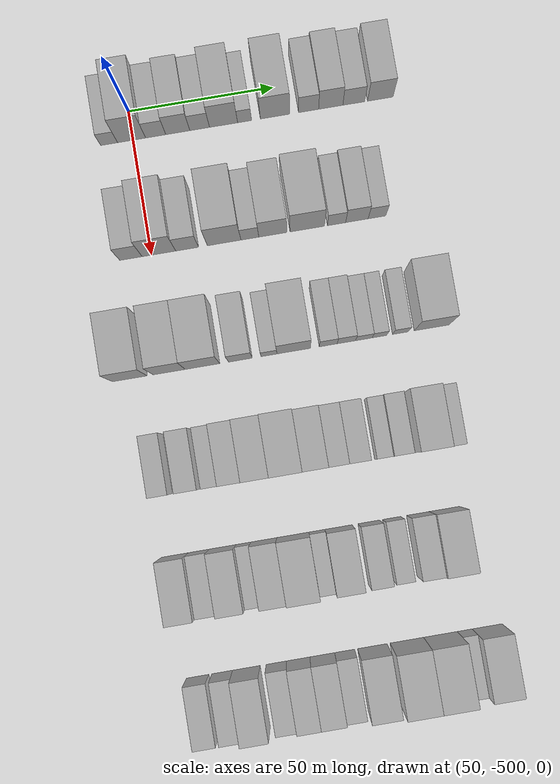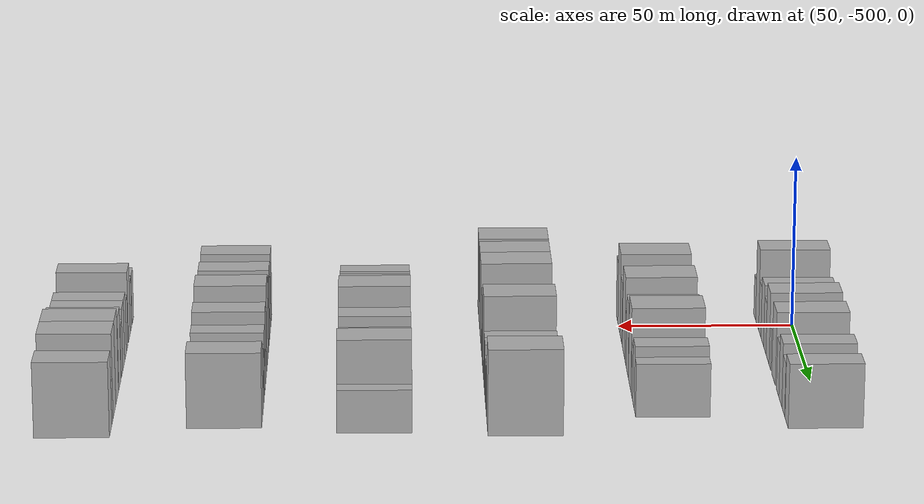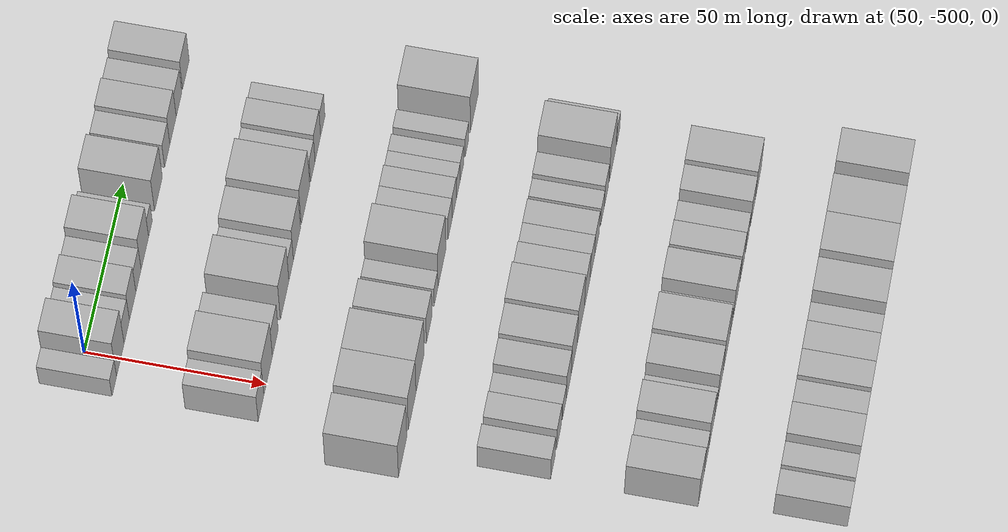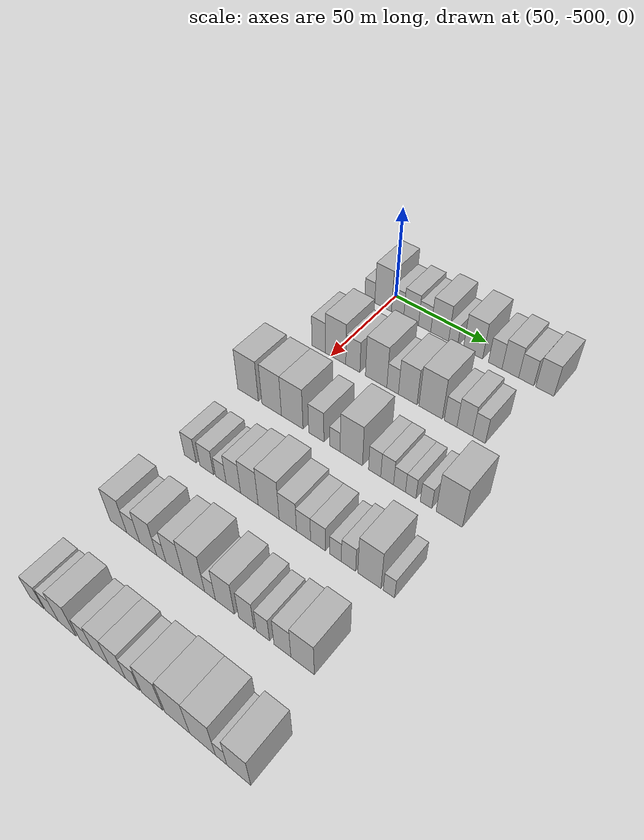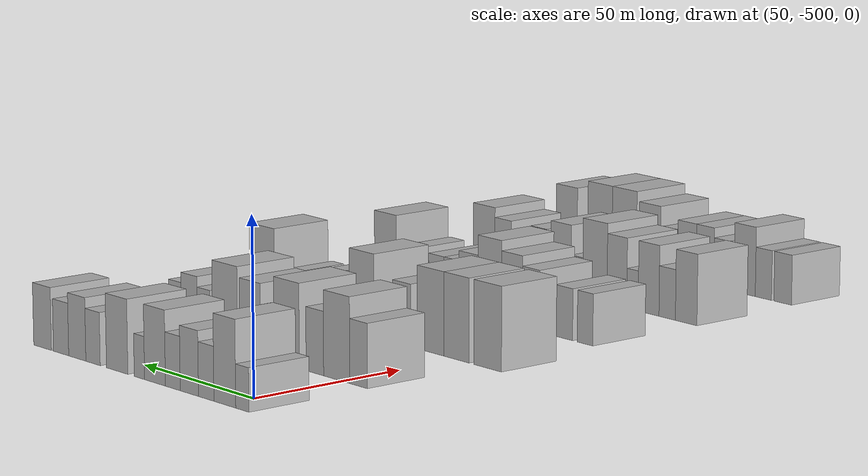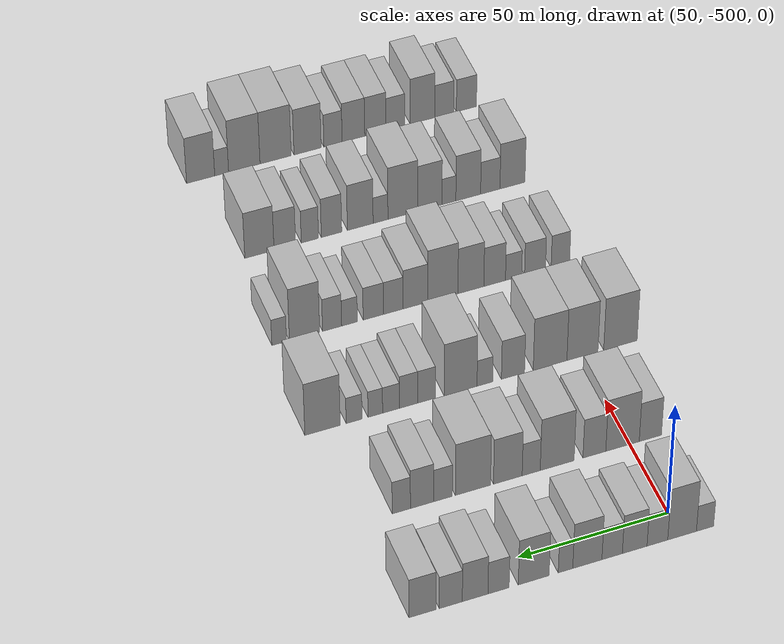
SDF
<sdf version="1.6">
 <world name="default">
  <model name="building_14">
   <static>1</static>
   <pose>50.0000 -508.1706 0 0.000000 0.000000 0.000000</pose>
   <link name="link">
    <pose>0 0 6.00 0 0 0</pose>
    <collision name="collision"><geometry><box><size>20.0000 5.7986 12.0000</size></box></geometry></collision>
    <visual name="visual">
     <cast_shadows>0</cast_shadows>
     <geometry><box><size>20.0000 5.7986 12.0000</size></box></geometry>
     <material>
      <script>
       <uri>model://HANNAS_wall/materials/scripts</uri>
       <uri>model://HANNAS_wall/materials/textures</uri>
       <name>vrc/HANNAS_wall</name>
      </script>
     </material>
    </visual>
   </link>
  </model>
  <model name="building_15">
   <static>1</static>
   <pose>50.0000 -500.4603 0 0.000000 0.000000 0.000000</pose>
   <link name="link">
    <pose>0 0 12.00 0 0 0</pose>
    <collision name="collision"><geometry><box><size>20.0000 9.6219 24.0000</size></box></geometry></collision>
    <visual name="visual">
     <cast_shadows>0</cast_shadows>
     <geometry><box><size>20.0000 9.6219 24.0000</size></box></geometry>
     <material>
      <script>
       <uri>model://HANNAS_wall/materials/scripts</uri>
       <uri>model://HANNAS_wall/materials/textures</uri>
       <name>vrc/HANNAS_wall</name>
      </script>
     </material>
    </visual>
   </link>
  </model>
  <model name="building_16">
   <static>1</static>
   <pose>50.0000 -492.1822 0 0.000000 0.000000 0.000000</pose>
   <link name="link">
    <pose>0 0 7.50 0 0 0</pose>
    <collision name="collision"><geometry><box><size>20.0000 6.9342 15.0000</size></box></geometry></collision>
    <visual name="visual">
     <cast_shadows>0</cast_shadows>
     <geometry><box><size>20.0000 6.9342 15.0000</size></box></geometry>
     <material>
      <script>
       <uri>model://HANNAS_wall/materials/scripts</uri>
       <uri>model://HANNAS_wall/materials/textures</uri>
       <name>vrc/HANNAS_wall</name>
      </script>
     </material>
    </visual>
   </link>
  </model>
  <model name="building_17">
   <static>1</static>
   <pose>50.0000 -484.5919 0 0.000000 0.000000 0.000000</pose>
   <link name="link">
    <pose>0 0 9.00 0 0 0</pose>
    <collision name="collision"><geometry><box><size>20.0000 8.2465 18.0000</size></box></geometry></collision>
    <visual name="visual">
     <cast_shadows>0</cast_shadows>
     <geometry><box><size>20.0000 8.2465 18.0000</size></box></geometry>
     <material>
      <script>
       <uri>model://HANNAS_wall/materials/scripts</uri>
       <uri>model://HANNAS_wall/materials/textures</uri>
       <name>vrc/HANNAS_wall</name>
      </script>
     </material>
    </visual>
   </link>
  </model>
  <model name="building_18">
   <static>1</static>
   <pose>50.0000 -477.0781 0 0.000000 0.000000 0.000000</pose>
   <link name="link">
    <pose>0 0 7.50 0 0 0</pose>
    <collision name="collision"><geometry><box><size>20.0000 6.7811 15.0000</size></box></geometry></collision>
    <visual name="visual">
     <cast_shadows>0</cast_shadows>
     <geometry><box><size>20.0000 6.7811 15.0000</size></box></geometry>
     <material>
      <script>
       <uri>model://HANNAS_wall/materials/scripts</uri>
       <uri>model://HANNAS_wall/materials/textures</uri>
       <name>vrc/HANNAS_wall</name>
      </script>
     </material>
    </visual>
   </link>
  </model>
  <model name="building_19">
   <static>1</static>
   <pose>50.0000 -468.8550 0 0.000000 0.000000 0.000000</pose>
   <link name="link">
    <pose>0 0 10.50 0 0 0</pose>
    <collision name="collision"><geometry><box><size>20.0000 9.6651 21.0000</size></box></geometry></collision>
    <visual name="visual">
     <cast_shadows>0</cast_shadows>
     <geometry><box><size>20.0000 9.6651 21.0000</size></box></geometry>
     <material>
      <script>
       <uri>model://HANNAS_wall/materials/scripts</uri>
       <uri>model://HANNAS_wall/materials/textures</uri>
       <name>vrc/HANNAS_wall</name>
      </script>
     </material>
    </visual>
   </link>
  </model>
  <model name="building_20">
   <static>1</static>
   <pose>50.0000 -461.6189 0 0.000000 0.000000 0.000000</pose>
   <link name="link">
    <pose>0 0 6.00 0 0 0</pose>
    <collision name="collision"><geometry><box><size>20.0000 4.8071 12.0000</size></box></geometry></collision>
    <visual name="visual">
     <cast_shadows>0</cast_shadows>
     <geometry><box><size>20.0000 4.8071 12.0000</size></box></geometry>
     <material>
      <script>
       <uri>model://HANNAS_wall/materials/scripts</uri>
       <uri>model://HANNAS_wall/materials/textures</uri>
       <name>vrc/HANNAS_wall</name>
      </script>
     </material>
    </visual>
   </link>
  </model>
  <model name="building_21">
   <static>1</static>
   <pose>50.0000 -451.1393 0 0.000000 0.000000 0.000000</pose>
   <link name="link">
    <pose>0 0 10.50 0 0 0</pose>
    <collision name="collision"><geometry><box><size>20.0000 10.1521 21.0000</size></box></geometry></collision>
    <visual name="visual">
     <cast_shadows>0</cast_shadows>
     <geometry><box><size>20.0000 10.1521 21.0000</size></box></geometry>
     <material>
      <script>
       <uri>model://HANNAS_wall/materials/scripts</uri>
       <uri>model://HANNAS_wall/materials/textures</uri>
       <name>vrc/HANNAS_wall</name>
      </script>
     </material>
    </visual>
   </link>
  </model>
  <model name="building_22">
   <static>1</static>
   <pose>50.0000 -439.6052 0 0.000000 0.000000 0.000000</pose>
   <link name="link">
    <pose>0 0 7.50 0 0 0</pose>
    <collision name="collision"><geometry><box><size>20.0000 6.9161 15.0000</size></box></geometry></collision>
    <visual name="visual">
     <cast_shadows>0</cast_shadows>
     <geometry><box><size>20.0000 6.9161 15.0000</size></box></geometry>
     <material>
      <script>
       <uri>model://HANNAS_wall/materials/scripts</uri>
       <uri>model://HANNAS_wall/materials/textures</uri>
       <name>vrc/HANNAS_wall</name>
      </script>
     </material>
    </visual>
   </link>
  </model>
  <model name="building_23">
   <static>1</static>
   <pose>50.0000 -431.9623 0 0.000000 0.000000 0.000000</pose>
   <link name="link">
    <pose>0 0 9.00 0 0 0</pose>
    <collision name="collision"><geometry><box><size>20.0000 8.3697 18.0000</size></box></geometry></collision>
    <visual name="visual">
     <cast_shadows>0</cast_shadows>
     <geometry><box><size>20.0000 8.3697 18.0000</size></box></geometry>
     <material>
      <script>
       <uri>model://HANNAS_wall/materials/scripts</uri>
       <uri>model://HANNAS_wall/materials/textures</uri>
       <name>vrc/HANNAS_wall</name>
      </script>
     </material>
    </visual>
   </link>
  </model>
  <model name="building_24">
   <static>1</static>
   <pose>50.0000 -424.0285 0 0.000000 0.000000 0.000000</pose>
   <link name="link">
    <pose>0 0 7.50 0 0 0</pose>
    <collision name="collision"><geometry><box><size>20.0000 7.4979 15.0000</size></box></geometry></collision>
    <visual name="visual">
     <cast_shadows>0</cast_shadows>
     <geometry><box><size>20.0000 7.4979 15.0000</size></box></geometry>
     <material>
      <script>
       <uri>model://HANNAS_wall/materials/scripts</uri>
       <uri>model://HANNAS_wall/materials/textures</uri>
       <name>vrc/HANNAS_wall</name>
      </script>
     </material>
    </visual>
   </link>
  </model>
  <model name="building_25">
   <static>1</static>
   <pose>50.0000 -414.8759 0 0.000000 0.000000 0.000000</pose>
   <link name="link">
    <pose>0 0 9.00 0 0 0</pose>
    <collision name="collision"><geometry><box><size>20.0000 8.8074 18.0000</size></box></geometry></collision>
    <visual name="visual">
     <cast_shadows>0</cast_shadows>
     <geometry><box><size>20.0000 8.8074 18.0000</size></box></geometry>
     <material>
      <script>
       <uri>model://HANNAS_wall/materials/scripts</uri>
       <uri>model://HANNAS_wall/materials/textures</uri>
       <name>vrc/HANNAS_wall</name>
      </script>
     </material>
    </visual>
   </link>
  </model>
  <model name="building_150">
   <static>1</static>
   <pose>90.0000 -506.9817 0 0.000000 0.000000 0.000000</pose>
   <link name="link">
    <pose>0 0 9.00 0 0 0</pose>
    <collision name="collision"><geometry><box><size>20.0000 7.6288 18.0000</size></box></geometry></collision>
    <visual name="visual">
     <cast_shadows>0</cast_shadows>
     <geometry><box><size>20.0000 7.6288 18.0000</size></box></geometry>
     <material>
      <script>
       <uri>model://HANNAS_wall/materials/scripts</uri>
       <uri>model://HANNAS_wall/materials/textures</uri>
       <name>vrc/HANNAS_wall</name>
      </script>
     </material>
    </visual>
   </link>
  </model>
  <model name="building_151">
   <static>1</static>
   <pose>90.0000 -497.4507 0 0.000000 0.000000 0.000000</pose>
   <link name="link">
    <pose>0 0 12.00 0 0 0</pose>
    <collision name="collision"><geometry><box><size>20.0000 11.4333 24.0000</size></box></geometry></collision>
    <visual name="visual">
     <cast_shadows>0</cast_shadows>
     <geometry><box><size>20.0000 11.4333 24.0000</size></box></geometry>
     <material>
      <script>
       <uri>model://HANNAS_wall/materials/scripts</uri>
       <uri>model://HANNAS_wall/materials/textures</uri>
       <name>vrc/HANNAS_wall</name>
      </script>
     </material>
    </visual>
   </link>
  </model>
  <model name="building_152">
   <static>1</static>
   <pose>90.0000 -487.8440 0 0.000000 0.000000 0.000000</pose>
   <link name="link">
    <pose>0 0 9.00 0 0 0</pose>
    <collision name="collision"><geometry><box><size>20.0000 7.7801 18.0000</size></box></geometry></collision>
    <visual name="visual">
     <cast_shadows>0</cast_shadows>
     <geometry><box><size>20.0000 7.7801 18.0000</size></box></geometry>
     <material>
      <script>
       <uri>model://HANNAS_wall/materials/scripts</uri>
       <uri>model://HANNAS_wall/materials/textures</uri>
       <name>vrc/HANNAS_wall</name>
      </script>
     </material>
    </visual>
   </link>
  </model>
  <model name="building_153">
   <static>1</static>
   <pose>90.0000 -475.2199 0 0.000000 0.000000 0.000000</pose>
   <link name="link">
    <pose>0 0 12.00 0 0 0</pose>
    <collision name="collision"><geometry><box><size>20.0000 11.4680 24.0000</size></box></geometry></collision>
    <visual name="visual">
     <cast_shadows>0</cast_shadows>
     <geometry><box><size>20.0000 11.4680 24.0000</size></box></geometry>
     <material>
      <script>
       <uri>model://HANNAS_wall/materials/scripts</uri>
       <uri>model://HANNAS_wall/materials/textures</uri>
       <name>vrc/HANNAS_wall</name>
      </script>
     </material>
    </visual>
   </link>
  </model>
  <model name="building_154">
   <static>1</static>
   <pose>90.0000 -466.4345 0 0.000000 0.000000 0.000000</pose>
   <link name="link">
    <pose>0 0 7.50 0 0 0</pose>
    <collision name="collision"><geometry><box><size>20.0000 6.1028 15.0000</size></box></geometry></collision>
    <visual name="visual">
     <cast_shadows>0</cast_shadows>
     <geometry><box><size>20.0000 6.1028 15.0000</size></box></geometry>
     <material>
      <script>
       <uri>model://HANNAS_wall/materials/scripts</uri>
       <uri>model://HANNAS_wall/materials/textures</uri>
       <name>vrc/HANNAS_wall</name>
      </script>
     </material>
    </visual>
   </link>
  </model>
  <model name="building_155">
   <static>1</static>
   <pose>90.0000 -458.5671 0 0.000000 0.000000 0.000000</pose>
   <link name="link">
    <pose>0 0 10.50 0 0 0</pose>
    <collision name="collision"><geometry><box><size>20.0000 9.6318 21.0000</size></box></geometry></collision>
    <visual name="visual">
     <cast_shadows>0</cast_shadows>
     <geometry><box><size>20.0000 9.6318 21.0000</size></box></geometry>
     <material>
      <script>
       <uri>model://HANNAS_wall/materials/scripts</uri>
       <uri>model://HANNAS_wall/materials/textures</uri>
       <name>vrc/HANNAS_wall</name>
      </script>
     </material>
    </visual>
   </link>
  </model>
  <model name="building_156">
   <static>1</static>
   <pose>90.0000 -446.8665 0 0.000000 0.000000 0.000000</pose>
   <link name="link">
    <pose>0 0 12.00 0 0 0</pose>
    <collision name="collision"><geometry><box><size>20.0000 11.7695 24.0000</size></box></geometry></collision>
    <visual name="visual">
     <cast_shadows>0</cast_shadows>
     <geometry><box><size>20.0000 11.7695 24.0000</size></box></geometry>
     <material>
      <script>
       <uri>model://HANNAS_wall/materials/scripts</uri>
       <uri>model://HANNAS_wall/materials/textures</uri>
       <name>vrc/HANNAS_wall</name>
      </script>
     </material>
    </visual>
   </link>
  </model>
  <model name="building_157">
   <static>1</static>
   <pose>90.0000 -436.8629 0 0.000000 0.000000 0.000000</pose>
   <link name="link">
    <pose>0 0 7.50 0 0 0</pose>
    <collision name="collision"><geometry><box><size>20.0000 6.2377 15.0000</size></box></geometry></collision>
    <visual name="visual">
     <cast_shadows>0</cast_shadows>
     <geometry><box><size>20.0000 6.2377 15.0000</size></box></geometry>
     <material>
      <script>
       <uri>model://HANNAS_wall/materials/scripts</uri>
       <uri>model://HANNAS_wall/materials/textures</uri>
       <name>vrc/HANNAS_wall</name>
      </script>
     </material>
    </visual>
   </link>
  </model>
  <model name="building_158">
   <static>1</static>
   <pose>90.0000 -429.8917 0 0.000000 0.000000 0.000000</pose>
   <link name="link">
    <pose>0 0 9.00 0 0 0</pose>
    <collision name="collision"><geometry><box><size>20.0000 7.7046 18.0000</size></box></geometry></collision>
    <visual name="visual">
     <cast_shadows>0</cast_shadows>
     <geometry><box><size>20.0000 7.7046 18.0000</size></box></geometry>
     <material>
      <script>
       <uri>model://HANNAS_wall/materials/scripts</uri>
       <uri>model://HANNAS_wall/materials/textures</uri>
       <name>vrc/HANNAS_wall</name>
      </script>
     </material>
    </visual>
   </link>
  </model>
  <model name="building_159">
   <static>1</static>
   <pose>90.0000 -423.0237 0 0.000000 0.000000 0.000000</pose>
   <link name="link">
    <pose>0 0 7.50 0 0 0</pose>
    <collision name="collision"><geometry><box><size>20.0000 6.0314 15.0000</size></box></geometry></collision>
    <visual name="visual">
     <cast_shadows>0</cast_shadows>
     <geometry><box><size>20.0000 6.0314 15.0000</size></box></geometry>
     <material>
      <script>
       <uri>model://HANNAS_wall/materials/scripts</uri>
       <uri>model://HANNAS_wall/materials/textures</uri>
       <name>vrc/HANNAS_wall</name>
      </script>
     </material>
    </visual>
   </link>
  </model>
  <model name="building_285">
   <static>1</static>
   <pose>130.0000 -513.6266 0 0.000000 0.000000 0.000000</pose>
   <link name="link">
    <pose>0 0 12.00 0 0 0</pose>
    <collision name="collision"><geometry><box><size>20.0000 11.7032 24.0000</size></box></geometry></collision>
    <visual name="visual">
     <cast_shadows>0</cast_shadows>
     <geometry><box><size>20.0000 11.7032 24.0000</size></box></geometry>
     <material>
      <script>
       <uri>model://HANNAS_wall/materials/scripts</uri>
       <uri>model://HANNAS_wall/materials/textures</uri>
       <name>vrc/HANNAS_wall</name>
      </script>
     </material>
    </visual>
   </link>
  </model>
  <model name="building_286">
   <static>1</static>
   <pose>130.0000 -500.3649 0 0.000000 0.000000 0.000000</pose>
   <link name="link">
    <pose>0 0 12.00 0 0 0</pose>
    <collision name="collision"><geometry><box><size>20.0000 10.8203 24.0000</size></box></geometry></collision>
    <visual name="visual">
     <cast_shadows>0</cast_shadows>
     <geometry><box><size>20.0000 10.8203 24.0000</size></box></geometry>
     <material>
      <script>
       <uri>model://HANNAS_wall/materials/scripts</uri>
       <uri>model://HANNAS_wall/materials/textures</uri>
       <name>vrc/HANNAS_wall</name>
      </script>
     </material>
    </visual>
   </link>
  </model>
  <model name="building_287">
   <static>1</static>
   <pose>130.0000 -489.1140 0 0.000000 0.000000 0.000000</pose>
   <link name="link">
    <pose>0 0 12.00 0 0 0</pose>
    <collision name="collision"><geometry><box><size>20.0000 11.6815 24.0000</size></box></geometry></collision>
    <visual name="visual">
     <cast_shadows>0</cast_shadows>
     <geometry><box><size>20.0000 11.6815 24.0000</size></box></geometry>
     <material>
      <script>
       <uri>model://HANNAS_wall/materials/scripts</uri>
       <uri>model://HANNAS_wall/materials/textures</uri>
       <name>vrc/HANNAS_wall</name>
      </script>
     </material>
    </visual>
   </link>
  </model>
  <model name="building_288">
   <static>1</static>
   <pose>130.0000 -476.2747 0 0.000000 0.000000 0.000000</pose>
   <link name="link">
    <pose>0 0 9.00 0 0 0</pose>
    <collision name="collision"><geometry><box><size>20.0000 7.9972 18.0000</size></box></geometry></collision>
    <visual name="visual">
     <cast_shadows>0</cast_shadows>
     <geometry><box><size>20.0000 7.9972 18.0000</size></box></geometry>
     <material>
      <script>
       <uri>model://HANNAS_wall/materials/scripts</uri>
       <uri>model://HANNAS_wall/materials/textures</uri>
       <name>vrc/HANNAS_wall</name>
      </script>
     </material>
    </visual>
   </link>
  </model>
  <model name="building_289">
   <static>1</static>
   <pose>130.0000 -466.5886 0 0.000000 0.000000 0.000000</pose>
   <link name="link">
    <pose>0 0 6.00 0 0 0</pose>
    <collision name="collision"><geometry><box><size>20.0000 5.3749 12.0000</size></box></geometry></collision>
    <visual name="visual">
     <cast_shadows>0</cast_shadows>
     <geometry><box><size>20.0000 5.3749 12.0000</size></box></geometry>
     <material>
      <script>
       <uri>model://HANNAS_wall/materials/scripts</uri>
       <uri>model://HANNAS_wall/materials/textures</uri>
       <name>vrc/HANNAS_wall</name>
      </script>
     </material>
    </visual>
   </link>
  </model>
  <model name="building_290">
   <static>1</static>
   <pose>130.0000 -458.2602 0 0.000000 0.000000 0.000000</pose>
   <link name="link">
    <pose>0 0 12.00 0 0 0</pose>
    <collision name="collision"><geometry><box><size>20.0000 11.2819 24.0000</size></box></geometry></collision>
    <visual name="visual">
     <cast_shadows>0</cast_shadows>
     <geometry><box><size>20.0000 11.2819 24.0000</size></box></geometry>
     <material>
      <script>
       <uri>model://HANNAS_wall/materials/scripts</uri>
       <uri>model://HANNAS_wall/materials/textures</uri>
       <name>vrc/HANNAS_wall</name>
      </script>
     </material>
    </visual>
   </link>
  </model>
  <model name="building_291">
   <static>1</static>
   <pose>130.0000 -446.6075 0 0.000000 0.000000 0.000000</pose>
   <link name="link">
    <pose>0 0 7.50 0 0 0</pose>
    <collision name="collision"><geometry><box><size>20.0000 6.0234 15.0000</size></box></geometry></collision>
    <visual name="visual">
     <cast_shadows>0</cast_shadows>
     <geometry><box><size>20.0000 6.0234 15.0000</size></box></geometry>
     <material>
      <script>
       <uri>model://HANNAS_wall/materials/scripts</uri>
       <uri>model://HANNAS_wall/materials/textures</uri>
       <name>vrc/HANNAS_wall</name>
      </script>
     </material>
    </visual>
   </link>
  </model>
  <model name="building_292">
   <static>1</static>
   <pose>130.0000 -440.4852 0 0.000000 0.000000 0.000000</pose>
   <link name="link">
    <pose>0 0 7.50 0 0 0</pose>
    <collision name="collision"><geometry><box><size>20.0000 6.2213 15.0000</size></box></geometry></collision>
    <visual name="visual">
     <cast_shadows>0</cast_shadows>
     <geometry><box><size>20.0000 6.2213 15.0000</size></box></geometry>
     <material>
      <script>
       <uri>model://HANNAS_wall/materials/scripts</uri>
       <uri>model://HANNAS_wall/materials/textures</uri>
       <name>vrc/HANNAS_wall</name>
      </script>
     </material>
    </visual>
   </link>
  </model>
  <model name="building_293">
   <static>1</static>
   <pose>130.0000 -434.5391 0 0.000000 0.000000 0.000000</pose>
   <link name="link">
    <pose>0 0 6.00 0 0 0</pose>
    <collision name="collision"><geometry><box><size>20.0000 5.6709 12.0000</size></box></geometry></collision>
    <visual name="visual">
     <cast_shadows>0</cast_shadows>
     <geometry><box><size>20.0000 5.6709 12.0000</size></box></geometry>
     <material>
      <script>
       <uri>model://HANNAS_wall/materials/scripts</uri>
       <uri>model://HANNAS_wall/materials/textures</uri>
       <name>vrc/HANNAS_wall</name>
      </script>
     </material>
    </visual>
   </link>
  </model>
  <model name="building_294">
   <static>1</static>
   <pose>130.0000 -429.2324 0 0.000000 0.000000 0.000000</pose>
   <link name="link">
    <pose>0 0 6.00 0 0 0</pose>
    <collision name="collision"><geometry><box><size>20.0000 4.9425 12.0000</size></box></geometry></collision>
    <visual name="visual">
     <cast_shadows>0</cast_shadows>
     <geometry><box><size>20.0000 4.9425 12.0000</size></box></geometry>
     <material>
      <script>
       <uri>model://HANNAS_wall/materials/scripts</uri>
       <uri>model://HANNAS_wall/materials/textures</uri>
       <name>vrc/HANNAS_wall</name>
      </script>
     </material>
    </visual>
   </link>
  </model>
  <model name="building_295">
   <static>1</static>
   <pose>130.0000 -422.0629 0 0.000000 0.000000 0.000000</pose>
   <link name="link">
    <pose>0 0 6.00 0 0 0</pose>
    <collision name="collision"><geometry><box><size>20.0000 5.3966 12.0000</size></box></geometry></collision>
    <visual name="visual">
     <cast_shadows>0</cast_shadows>
     <geometry><box><size>20.0000 5.3966 12.0000</size></box></geometry>
     <material>
      <script>
       <uri>model://HANNAS_wall/materials/scripts</uri>
       <uri>model://HANNAS_wall/materials/textures</uri>
       <name>vrc/HANNAS_wall</name>
      </script>
     </material>
    </visual>
   </link>
  </model>
  <model name="building_296">
   <static>1</static>
   <pose>130.0000 -411.4295 0 0.000000 0.000000 0.000000</pose>
   <link name="link">
    <pose>0 0 12.00 0 0 0</pose>
    <collision name="collision"><geometry><box><size>20.0000 11.8702 24.0000</size></box></geometry></collision>
    <visual name="visual">
     <cast_shadows>0</cast_shadows>
     <geometry><box><size>20.0000 11.8702 24.0000</size></box></geometry>
     <material>
      <script>
       <uri>model://HANNAS_wall/materials/scripts</uri>
       <uri>model://HANNAS_wall/materials/textures</uri>
       <name>vrc/HANNAS_wall</name>
      </script>
     </material>
    </visual>
   </link>
  </model>
  <model name="building_429">
   <static>1</static>
   <pose>170.0000 -509.0460 0 0.000000 0.000000 0.000000</pose>
   <link name="link">
    <pose>0 0 7.50 0 0 0</pose>
    <collision name="collision"><geometry><box><size>20.0000 6.5701 15.0000</size></box></geometry></collision>
    <visual name="visual">
     <cast_shadows>0</cast_shadows>
     <geometry><box><size>20.0000 6.5701 15.0000</size></box></geometry>
     <material>
      <script>
       <uri>model://HANNAS_wall/materials/scripts</uri>
       <uri>model://HANNAS_wall/materials/textures</uri>
       <name>vrc/HANNAS_wall</name>
      </script>
     </material>
    </visual>
   </link>
  </model>
  <model name="building_430">
   <static>1</static>
   <pose>170.0000 -500.0397 0 0.000000 0.000000 0.000000</pose>
   <link name="link">
    <pose>0 0 7.50 0 0 0</pose>
    <collision name="collision"><geometry><box><size>20.0000 7.4425 15.0000</size></box></geometry></collision>
    <visual name="visual">
     <cast_shadows>0</cast_shadows>
     <geometry><box><size>20.0000 7.4425 15.0000</size></box></geometry>
     <material>
      <script>
       <uri>model://HANNAS_wall/materials/scripts</uri>
       <uri>model://HANNAS_wall/materials/textures</uri>
       <name>vrc/HANNAS_wall</name>
      </script>
     </material>
    </visual>
   </link>
  </model>
  <model name="building_431">
   <static>1</static>
   <pose>170.0000 -492.4528 0 0.000000 0.000000 0.000000</pose>
   <link name="link">
    <pose>0 0 6.00 0 0 0</pose>
    <collision name="collision"><geometry><box><size>20.0000 5.7312 12.0000</size></box></geometry></collision>
    <visual name="visual">
     <cast_shadows>0</cast_shadows>
     <geometry><box><size>20.0000 5.7312 12.0000</size></box></geometry>
     <material>
      <script>
       <uri>model://HANNAS_wall/materials/scripts</uri>
       <uri>model://HANNAS_wall/materials/textures</uri>
       <name>vrc/HANNAS_wall</name>
      </script>
     </material>
    </visual>
   </link>
  </model>
  <model name="building_432">
   <static>1</static>
   <pose>170.0000 -485.7741 0 0.000000 0.000000 0.000000</pose>
   <link name="link">
    <pose>0 0 9.00 0 0 0</pose>
    <collision name="collision"><geometry><box><size>20.0000 7.6261 18.0000</size></box></geometry></collision>
    <visual name="visual">
     <cast_shadows>0</cast_shadows>
     <geometry><box><size>20.0000 7.6261 18.0000</size></box></geometry>
     <material>
      <script>
       <uri>model://HANNAS_wall/materials/scripts</uri>
       <uri>model://HANNAS_wall/materials/textures</uri>
       <name>vrc/HANNAS_wall</name>
      </script>
     </material>
    </visual>
   </link>
  </model>
  <model name="building_433">
   <static>1</static>
   <pose>170.0000 -477.4160 0 0.000000 0.000000 0.000000</pose>
   <link name="link">
    <pose>0 0 10.50 0 0 0</pose>
    <collision name="collision"><geometry><box><size>20.0000 9.0901 21.0000</size></box></geometry></collision>
    <visual name="visual">
     <cast_shadows>0</cast_shadows>
     <geometry><box><size>20.0000 9.0901 21.0000</size></box></geometry>
     <material>
      <script>
       <uri>model://HANNAS_wall/materials/scripts</uri>
       <uri>model://HANNAS_wall/materials/textures</uri>
       <name>vrc/HANNAS_wall</name>
      </script>
     </material>
    </visual>
   </link>
  </model>
  <model name="building_434">
   <static>1</static>
   <pose>170.0000 -467.5700 0 0.000000 0.000000 0.000000</pose>
   <link name="link">
    <pose>0 0 12.00 0 0 0</pose>
    <collision name="collision"><geometry><box><size>20.0000 10.6018 24.0000</size></box></geometry></collision>
    <visual name="visual">
     <cast_shadows>0</cast_shadows>
     <geometry><box><size>20.0000 10.6018 24.0000</size></box></geometry>
     <material>
      <script>
       <uri>model://HANNAS_wall/materials/scripts</uri>
       <uri>model://HANNAS_wall/materials/textures</uri>
       <name>vrc/HANNAS_wall</name>
      </script>
     </material>
    </visual>
   </link>
  </model>
  <model name="building_435">
   <static>1</static>
   <pose>170.0000 -457.9901 0 0.000000 0.000000 0.000000</pose>
   <link name="link">
    <pose>0 0 9.00 0 0 0</pose>
    <collision name="collision"><geometry><box><size>20.0000 8.5581 18.0000</size></box></geometry></collision>
    <visual name="visual">
     <cast_shadows>0</cast_shadows>
     <geometry><box><size>20.0000 8.5581 18.0000</size></box></geometry>
     <material>
      <script>
       <uri>model://HANNAS_wall/materials/scripts</uri>
       <uri>model://HANNAS_wall/materials/textures</uri>
       <name>vrc/HANNAS_wall</name>
      </script>
     </material>
    </visual>
   </link>
  </model>
  <model name="building_436">
   <static>1</static>
   <pose>170.0000 -450.2870 0 0.000000 0.000000 0.000000</pose>
   <link name="link">
    <pose>0 0 7.50 0 0 0</pose>
    <collision name="collision"><geometry><box><size>20.0000 6.8481 15.0000</size></box></geometry></collision>
    <visual name="visual">
     <cast_shadows>0</cast_shadows>
     <geometry><box><size>20.0000 6.8481 15.0000</size></box></geometry>
     <material>
      <script>
       <uri>model://HANNAS_wall/materials/scripts</uri>
       <uri>model://HANNAS_wall/materials/textures</uri>
       <name>vrc/HANNAS_wall</name>
      </script>
     </material>
    </visual>
   </link>
  </model>
  <model name="building_437">
   <static>1</static>
   <pose>170.0000 -443.3414 0 0.000000 0.000000 0.000000</pose>
   <link name="link">
    <pose>0 0 7.50 0 0 0</pose>
    <collision name="collision"><geometry><box><size>20.0000 7.0431 15.0000</size></box></geometry></collision>
    <visual name="visual">
     <cast_shadows>0</cast_shadows>
     <geometry><box><size>20.0000 7.0431 15.0000</size></box></geometry>
     <material>
      <script>
       <uri>model://HANNAS_wall/materials/scripts</uri>
       <uri>model://HANNAS_wall/materials/textures</uri>
       <name>vrc/HANNAS_wall</name>
      </script>
     </material>
    </visual>
   </link>
  </model>
  <model name="building_438">
   <static>1</static>
   <pose>170.0000 -435.0998 0 0.000000 0.000000 0.000000</pose>
   <link name="link">
    <pose>0 0 6.00 0 0 0</pose>
    <collision name="collision"><geometry><box><size>20.0000 5.4401 12.0000</size></box></geometry></collision>
    <visual name="visual">
     <cast_shadows>0</cast_shadows>
     <geometry><box><size>20.0000 5.4401 12.0000</size></box></geometry>
     <material>
      <script>
       <uri>model://HANNAS_wall/materials/scripts</uri>
       <uri>model://HANNAS_wall/materials/textures</uri>
       <name>vrc/HANNAS_wall</name>
      </script>
     </material>
    </visual>
   </link>
  </model>
  <model name="building_439">
   <static>1</static>
   <pose>170.0000 -429.0855 0 0.000000 0.000000 0.000000</pose>
   <link name="link">
    <pose>0 0 7.50 0 0 0</pose>
    <collision name="collision"><geometry><box><size>20.0000 6.5884 15.0000</size></box></geometry></collision>
    <visual name="visual">
     <cast_shadows>0</cast_shadows>
     <geometry><box><size>20.0000 6.5884 15.0000</size></box></geometry>
     <material>
      <script>
       <uri>model://HANNAS_wall/materials/scripts</uri>
       <uri>model://HANNAS_wall/materials/textures</uri>
       <name>vrc/HANNAS_wall</name>
      </script>
     </material>
    </visual>
   </link>
  </model>
  <model name="building_440">
   <static>1</static>
   <pose>170.0000 -419.5982 0 0.000000 0.000000 0.000000</pose>
   <link name="link">
    <pose>0 0 12.00 0 0 0</pose>
    <collision name="collision"><geometry><box><size>20.0000 10.3861 24.0000</size></box></geometry></collision>
    <visual name="visual">
     <cast_shadows>0</cast_shadows>
     <geometry><box><size>20.0000 10.3861 24.0000</size></box></geometry>
     <material>
      <script>
       <uri>model://HANNAS_wall/materials/scripts</uri>
       <uri>model://HANNAS_wall/materials/textures</uri>
       <name>vrc/HANNAS_wall</name>
      </script>
     </material>
    </visual>
   </link>
  </model>
  <model name="building_441">
   <static>1</static>
   <pose>170.0000 -410.9027 0 0.000000 0.000000 0.000000</pose>
   <link name="link">
    <pose>0 0 6.00 0 0 0</pose>
    <collision name="collision"><geometry><box><size>20.0000 5.0049 12.0000</size></box></geometry></collision>
    <visual name="visual">
     <cast_shadows>0</cast_shadows>
     <geometry><box><size>20.0000 5.0049 12.0000</size></box></geometry>
     <material>
      <script>
       <uri>model://HANNAS_wall/materials/scripts</uri>
       <uri>model://HANNAS_wall/materials/textures</uri>
       <name>vrc/HANNAS_wall</name>
      </script>
     </material>
    </visual>
   </link>
  </model>
  <model name="building_572">
   <static>1</static>
   <pose>210.0000 -508.0218 0 0.000000 0.000000 0.000000</pose>
   <link name="link">
    <pose>0 0 10.50 0 0 0</pose>
    <collision name="collision"><geometry><box><size>20.0000 9.0498 21.0000</size></box></geometry></collision>
    <visual name="visual">
     <cast_shadows>0</cast_shadows>
     <geometry><box><size>20.0000 9.0498 21.0000</size></box></geometry>
     <material>
      <script>
       <uri>model://HANNAS_wall/materials/scripts</uri>
       <uri>model://HANNAS_wall/materials/textures</uri>
       <name>vrc/HANNAS_wall</name>
      </script>
     </material>
    </visual>
   </link>
  </model>
  <model name="building_573">
   <static>1</static>
   <pose>210.0000 -500.0065 0 0.000000 0.000000 0.000000</pose>
   <link name="link">
    <pose>0 0 7.50 0 0 0</pose>
    <collision name="collision"><geometry><box><size>20.0000 6.9809 15.0000</size></box></geometry></collision>
    <visual name="visual">
     <cast_shadows>0</cast_shadows>
     <geometry><box><size>20.0000 6.9809 15.0000</size></box></geometry>
     <material>
      <script>
       <uri>model://HANNAS_wall/materials/scripts</uri>
       <uri>model://HANNAS_wall/materials/textures</uri>
       <name>vrc/HANNAS_wall</name>
      </script>
     </material>
    </visual>
   </link>
  </model>
  <model name="building_574">
   <static>1</static>
   <pose>210.0000 -492.0590 0 0.000000 0.000000 0.000000</pose>
   <link name="link">
    <pose>0 0 10.50 0 0 0</pose>
    <collision name="collision"><geometry><box><size>20.0000 8.9141 21.0000</size></box></geometry></collision>
    <visual name="visual">
     <cast_shadows>0</cast_shadows>
     <geometry><box><size>20.0000 8.9141 21.0000</size></box></geometry>
     <material>
      <script>
       <uri>model://HANNAS_wall/materials/scripts</uri>
       <uri>model://HANNAS_wall/materials/textures</uri>
       <name>vrc/HANNAS_wall</name>
      </script>
     </material>
    </visual>
   </link>
  </model>
  <model name="building_575">
   <static>1</static>
   <pose>210.0000 -485.1401 0 0.000000 0.000000 0.000000</pose>
   <link name="link">
    <pose>0 0 6.00 0 0 0</pose>
    <collision name="collision"><geometry><box><size>20.0000 4.9238 12.0000</size></box></geometry></collision>
    <visual name="visual">
     <cast_shadows>0</cast_shadows>
     <geometry><box><size>20.0000 4.9238 12.0000</size></box></geometry>
     <material>
      <script>
       <uri>model://HANNAS_wall/materials/scripts</uri>
       <uri>model://HANNAS_wall/materials/textures</uri>
       <name>vrc/HANNAS_wall</name>
      </script>
     </material>
    </visual>
   </link>
  </model>
  <model name="building_576">
   <static>1</static>
   <pose>210.0000 -478.3556 0 0.000000 0.000000 0.000000</pose>
   <link name="link">
    <pose>0 0 10.50 0 0 0</pose>
    <collision name="collision"><geometry><box><size>20.0000 8.6453 21.0000</size></box></geometry></collision>
    <visual name="visual">
     <cast_shadows>0</cast_shadows>
     <geometry><box><size>20.0000 8.6453 21.0000</size></box></geometry>
     <material>
      <script>
       <uri>model://HANNAS_wall/materials/scripts</uri>
       <uri>model://HANNAS_wall/materials/textures</uri>
       <name>vrc/HANNAS_wall</name>
      </script>
     </material>
    </visual>
   </link>
  </model>
  <model name="building_577">
   <static>1</static>
   <pose>210.0000 -468.6775 0 0.000000 0.000000 0.000000</pose>
   <link name="link">
    <pose>0 0 12.00 0 0 0</pose>
    <collision name="collision"><geometry><box><size>20.0000 10.7109 24.0000</size></box></geometry></collision>
    <visual name="visual">
     <cast_shadows>0</cast_shadows>
     <geometry><box><size>20.0000 10.7109 24.0000</size></box></geometry>
     <material>
      <script>
       <uri>model://HANNAS_wall/materials/scripts</uri>
       <uri>model://HANNAS_wall/materials/textures</uri>
       <name>vrc/HANNAS_wall</name>
      </script>
     </material>
    </visual>
   </link>
  </model>
  <model name="building_578">
   <static>1</static>
   <pose>210.0000 -460.6870 0 0.000000 0.000000 0.000000</pose>
   <link name="link">
    <pose>0 0 6.00 0 0 0</pose>
    <collision name="collision"><geometry><box><size>20.0000 5.2701 12.0000</size></box></geometry></collision>
    <visual name="visual">
     <cast_shadows>0</cast_shadows>
     <geometry><box><size>20.0000 5.2701 12.0000</size></box></geometry>
     <material>
      <script>
       <uri>model://HANNAS_wall/materials/scripts</uri>
       <uri>model://HANNAS_wall/materials/textures</uri>
       <name>vrc/HANNAS_wall</name>
      </script>
     </material>
    </visual>
   </link>
  </model>
  <model name="building_579">
   <static>1</static>
   <pose>210.0000 -453.4889 0 0.000000 0.000000 0.000000</pose>
   <link name="link">
    <pose>0 0 10.50 0 0 0</pose>
    <collision name="collision"><geometry><box><size>20.0000 9.1260 21.0000</size></box></geometry></collision>
    <visual name="visual">
     <cast_shadows>0</cast_shadows>
     <geometry><box><size>20.0000 9.1260 21.0000</size></box></geometry>
     <material>
      <script>
       <uri>model://HANNAS_wall/materials/scripts</uri>
       <uri>model://HANNAS_wall/materials/textures</uri>
       <name>vrc/HANNAS_wall</name>
      </script>
     </material>
    </visual>
   </link>
  </model>
  <model name="building_580">
   <static>1</static>
   <pose>210.0000 -443.3216 0 0.000000 0.000000 0.000000</pose>
   <link name="link">
    <pose>0 0 9.00 0 0 0</pose>
    <collision name="collision"><geometry><box><size>20.0000 7.2086 18.0000</size></box></geometry></collision>
    <visual name="visual">
     <cast_shadows>0</cast_shadows>
     <geometry><box><size>20.0000 7.2086 18.0000</size></box></geometry>
     <material>
      <script>
       <uri>model://HANNAS_wall/materials/scripts</uri>
       <uri>model://HANNAS_wall/materials/textures</uri>
       <name>vrc/HANNAS_wall</name>
      </script>
     </material>
    </visual>
   </link>
  </model>
  <model name="building_581">
   <static>1</static>
   <pose>210.0000 -435.6884 0 0.000000 0.000000 0.000000</pose>
   <link name="link">
    <pose>0 0 7.50 0 0 0</pose>
    <collision name="collision"><geometry><box><size>20.0000 6.0578 15.0000</size></box></geometry></collision>
    <visual name="visual">
     <cast_shadows>0</cast_shadows>
     <geometry><box><size>20.0000 6.0578 15.0000</size></box></geometry>
     <material>
      <script>
       <uri>model://HANNAS_wall/materials/scripts</uri>
       <uri>model://HANNAS_wall/materials/textures</uri>
       <name>vrc/HANNAS_wall</name>
      </script>
     </material>
    </visual>
   </link>
  </model>
  <model name="building_582">
   <static>1</static>
   <pose>210.0000 -426.8784 0 0.000000 0.000000 0.000000</pose>
   <link name="link">
    <pose>0 0 9.00 0 0 0</pose>
    <collision name="collision"><geometry><box><size>20.0000 7.5621 18.0000</size></box></geometry></collision>
    <visual name="visual">
     <cast_shadows>0</cast_shadows>
     <geometry><box><size>20.0000 7.5621 18.0000</size></box></geometry>
     <material>
      <script>
       <uri>model://HANNAS_wall/materials/scripts</uri>
       <uri>model://HANNAS_wall/materials/textures</uri>
       <name>vrc/HANNAS_wall</name>
      </script>
     </material>
    </visual>
   </link>
  </model>
  <model name="building_583">
   <static>1</static>
   <pose>210.0000 -417.9913 0 0.000000 0.000000 0.000000</pose>
   <link name="link">
    <pose>0 0 10.50 0 0 0</pose>
    <collision name="collision"><geometry><box><size>20.0000 10.2121 21.0000</size></box></geometry></collision>
    <visual name="visual">
     <cast_shadows>0</cast_shadows>
     <geometry><box><size>20.0000 10.2121 21.0000</size></box></geometry>
     <material>
      <script>
       <uri>model://HANNAS_wall/materials/scripts</uri>
       <uri>model://HANNAS_wall/materials/textures</uri>
       <name>vrc/HANNAS_wall</name>
      </script>
     </material>
    </visual>
   </link>
  </model>
  <model name="building_718">
   <static>1</static>
   <pose>250.0000 -506.9809 0 0.000000 0.000000 0.000000</pose>
   <link name="link">
    <pose>0 0 7.50 0 0 0</pose>
    <collision name="collision"><geometry><box><size>20.0000 7.3918 15.0000</size></box></geometry></collision>
    <visual name="visual">
     <cast_shadows>0</cast_shadows>
     <geometry><box><size>20.0000 7.3918 15.0000</size></box></geometry>
     <material>
      <script>
       <uri>model://HANNAS_wall/materials/scripts</uri>
       <uri>model://HANNAS_wall/materials/textures</uri>
       <name>vrc/HANNAS_wall</name>
      </script>
     </material>
    </visual>
   </link>
  </model>
  <model name="building_719">
   <static>1</static>
   <pose>250.0000 -498.8585 0 0.000000 0.000000 0.000000</pose>
   <link name="link">
    <pose>0 0 7.50 0 0 0</pose>
    <collision name="collision"><geometry><box><size>20.0000 6.8529 15.0000</size></box></geometry></collision>
    <visual name="visual">
     <cast_shadows>0</cast_shadows>
     <geometry><box><size>20.0000 6.8529 15.0000</size></box></geometry>
     <material>
      <script>
       <uri>model://HANNAS_wall/materials/scripts</uri>
       <uri>model://HANNAS_wall/materials/textures</uri>
       <name>vrc/HANNAS_wall</name>
      </script>
     </material>
    </visual>
   </link>
  </model>
  <model name="building_720">
   <static>1</static>
   <pose>250.0000 -490.8719 0 0.000000 0.000000 0.000000</pose>
   <link name="link">
    <pose>0 0 10.50 0 0 0</pose>
    <collision name="collision"><geometry><box><size>20.0000 9.1204 21.0000</size></box></geometry></collision>
    <visual name="visual">
     <cast_shadows>0</cast_shadows>
     <geometry><box><size>20.0000 9.1204 21.0000</size></box></geometry>
     <material>
      <script>
       <uri>model://HANNAS_wall/materials/scripts</uri>
       <uri>model://HANNAS_wall/materials/textures</uri>
       <name>vrc/HANNAS_wall</name>
      </script>
     </material>
    </visual>
   </link>
  </model>
  <model name="building_721">
   <static>1</static>
   <pose>250.0000 -480.9242 0 0.000000 0.000000 0.000000</pose>
   <link name="link">
    <pose>0 0 7.50 0 0 0</pose>
    <collision name="collision"><geometry><box><size>20.0000 6.7750 15.0000</size></box></geometry></collision>
    <visual name="visual">
     <cast_shadows>0</cast_shadows>
     <geometry><box><size>20.0000 6.7750 15.0000</size></box></geometry>
     <material>
      <script>
       <uri>model://HANNAS_wall/materials/scripts</uri>
       <uri>model://HANNAS_wall/materials/textures</uri>
       <name>vrc/HANNAS_wall</name>
      </script>
     </material>
    </visual>
   </link>
  </model>
  <model name="building_722">
   <static>1</static>
   <pose>250.0000 -473.6645 0 0.000000 0.000000 0.000000</pose>
   <link name="link">
    <pose>0 0 9.00 0 0 0</pose>
    <collision name="collision"><geometry><box><size>20.0000 7.7444 18.0000</size></box></geometry></collision>
    <visual name="visual">
     <cast_shadows>0</cast_shadows>
     <geometry><box><size>20.0000 7.7444 18.0000</size></box></geometry>
     <material>
      <script>
       <uri>model://HANNAS_wall/materials/scripts</uri>
       <uri>model://HANNAS_wall/materials/textures</uri>
       <name>vrc/HANNAS_wall</name>
      </script>
     </material>
    </visual>
   </link>
  </model>
  <model name="building_723">
   <static>1</static>
   <pose>250.0000 -465.6920 0 0.000000 0.000000 0.000000</pose>
   <link name="link">
    <pose>0 0 9.00 0 0 0</pose>
    <collision name="collision"><geometry><box><size>20.0000 8.2006 18.0000</size></box></geometry></collision>
    <visual name="visual">
     <cast_shadows>0</cast_shadows>
     <geometry><box><size>20.0000 8.2006 18.0000</size></box></geometry>
     <material>
      <script>
       <uri>model://HANNAS_wall/materials/scripts</uri>
       <uri>model://HANNAS_wall/materials/textures</uri>
       <name>vrc/HANNAS_wall</name>
      </script>
     </material>
    </visual>
   </link>
  </model>
  <model name="building_724">
   <static>1</static>
   <pose>250.0000 -458.2921 0 0.000000 0.000000 0.000000</pose>
   <link name="link">
    <pose>0 0 7.50 0 0 0</pose>
    <collision name="collision"><geometry><box><size>20.0000 6.5991 15.0000</size></box></geometry></collision>
    <visual name="visual">
     <cast_shadows>0</cast_shadows>
     <geometry><box><size>20.0000 6.5991 15.0000</size></box></geometry>
     <material>
      <script>
       <uri>model://HANNAS_wall/materials/scripts</uri>
       <uri>model://HANNAS_wall/materials/textures</uri>
       <name>vrc/HANNAS_wall</name>
      </script>
     </material>
    </visual>
   </link>
  </model>
  <model name="building_725">
   <static>1</static>
   <pose>250.0000 -449.1039 0 0.000000 0.000000 0.000000</pose>
   <link name="link">
    <pose>0 0 10.50 0 0 0</pose>
    <collision name="collision"><geometry><box><size>20.0000 9.7773 21.0000</size></box></geometry></collision>
    <visual name="visual">
     <cast_shadows>0</cast_shadows>
     <geometry><box><size>20.0000 9.7773 21.0000</size></box></geometry>
     <material>
      <script>
       <uri>model://HANNAS_wall/materials/scripts</uri>
       <uri>model://HANNAS_wall/materials/textures</uri>
       <name>vrc/HANNAS_wall</name>
      </script>
     </material>
    </visual>
   </link>
  </model>
  <model name="building_726">
   <static>1</static>
   <pose>250.0000 -437.6241 0 0.000000 0.000000 0.000000</pose>
   <link name="link">
    <pose>0 0 12.00 0 0 0</pose>
    <collision name="collision"><geometry><box><size>20.0000 11.1823 24.0000</size></box></geometry></collision>
    <visual name="visual">
     <cast_shadows>0</cast_shadows>
     <geometry><box><size>20.0000 11.1823 24.0000</size></box></geometry>
     <material>
      <script>
       <uri>model://HANNAS_wall/materials/scripts</uri>
       <uri>model://HANNAS_wall/materials/textures</uri>
       <name>vrc/HANNAS_wall</name>
      </script>
     </material>
    </visual>
   </link>
  </model>
  <model name="building_727">
   <static>1</static>
   <pose>250.0000 -426.4223 0 0.000000 0.000000 0.000000</pose>
   <link name="link">
    <pose>0 0 12.00 0 0 0</pose>
    <collision name="collision"><geometry><box><size>20.0000 11.2213 24.0000</size></box></geometry></collision>
    <visual name="visual">
     <cast_shadows>0</cast_shadows>
     <geometry><box><size>20.0000 11.2213 24.0000</size></box></geometry>
     <material>
      <script>
       <uri>model://HANNAS_wall/materials/scripts</uri>
       <uri>model://HANNAS_wall/materials/textures</uri>
       <name>vrc/HANNAS_wall</name>
      </script>
     </material>
    </visual>
   </link>
  </model>
  <model name="building_728">
   <static>1</static>
   <pose>250.0000 -418.3428 0 0.000000 0.000000 0.000000</pose>
   <link name="link">
    <pose>0 0 6.00 0 0 0</pose>
    <collision name="collision"><geometry><box><size>20.0000 4.9377 12.0000</size></box></geometry></collision>
    <visual name="visual">
     <cast_shadows>0</cast_shadows>
     <geometry><box><size>20.0000 4.9377 12.0000</size></box></geometry>
     <material>
      <script>
       <uri>model://HANNAS_wall/materials/scripts</uri>
       <uri>model://HANNAS_wall/materials/textures</uri>
       <name>vrc/HANNAS_wall</name>
      </script>
     </material>
    </visual>
   </link>
  </model>
  <model name="building_729">
   <static>1</static>
   <pose>250.0000 -410.8770 0 0.000000 0.000000 0.000000</pose>
   <link name="link">
    <pose>0 0 10.50 0 0 0</pose>
    <collision name="collision"><geometry><box><size>20.0000 9.9940 21.0000</size></box></geometry></collision>
    <visual name="visual">
     <cast_shadows>0</cast_shadows>
     <geometry><box><size>20.0000 9.9940 21.0000</size></box></geometry>
     <material>
      <script>
       <uri>model://HANNAS_wall/materials/scripts</uri>
       <uri>model://HANNAS_wall/materials/textures</uri>
       <name>vrc/HANNAS_wall</name>
      </script>
     </material>
    </visual>
   </link>
  </model>
 </world>
</sdf>
